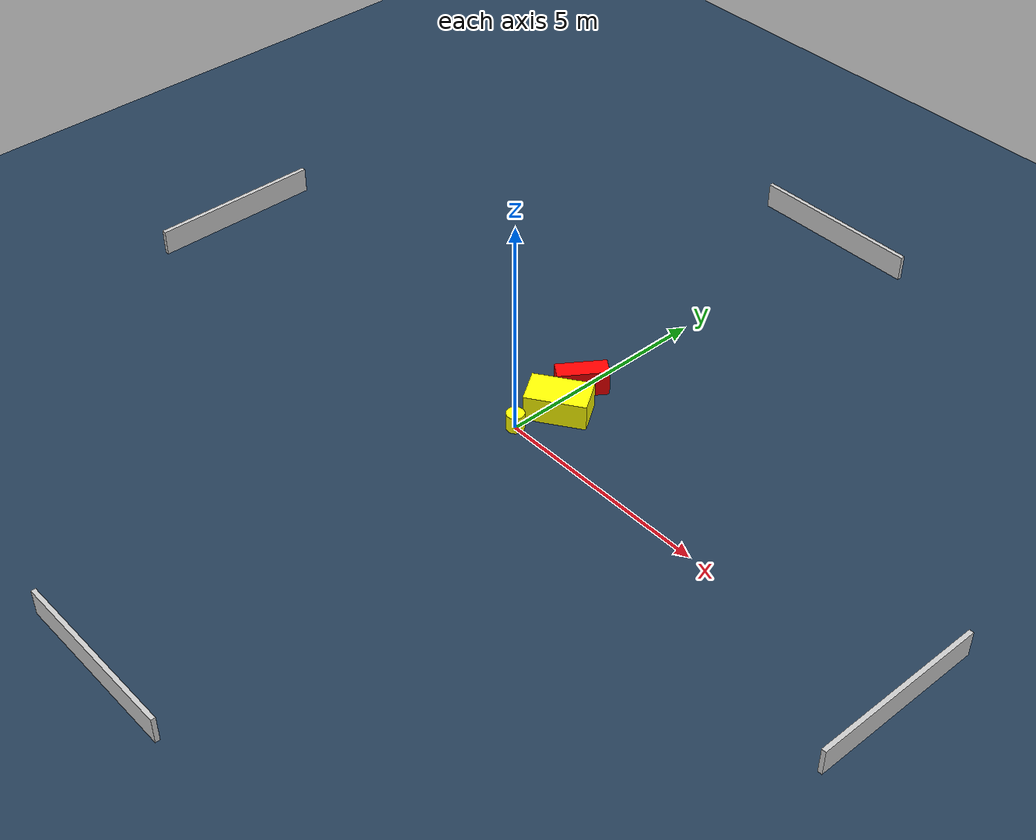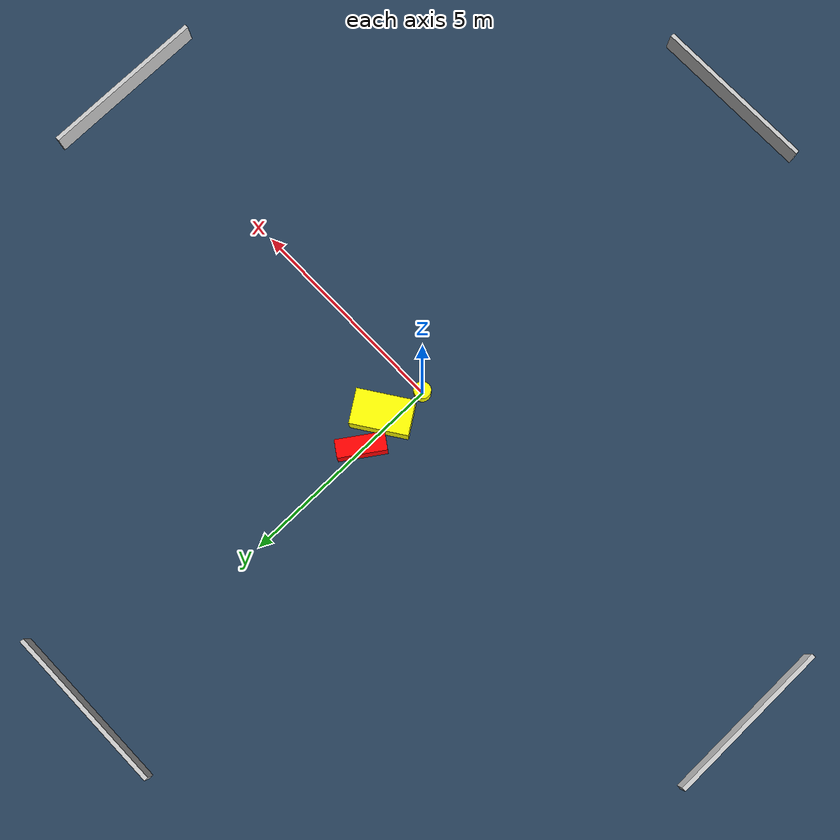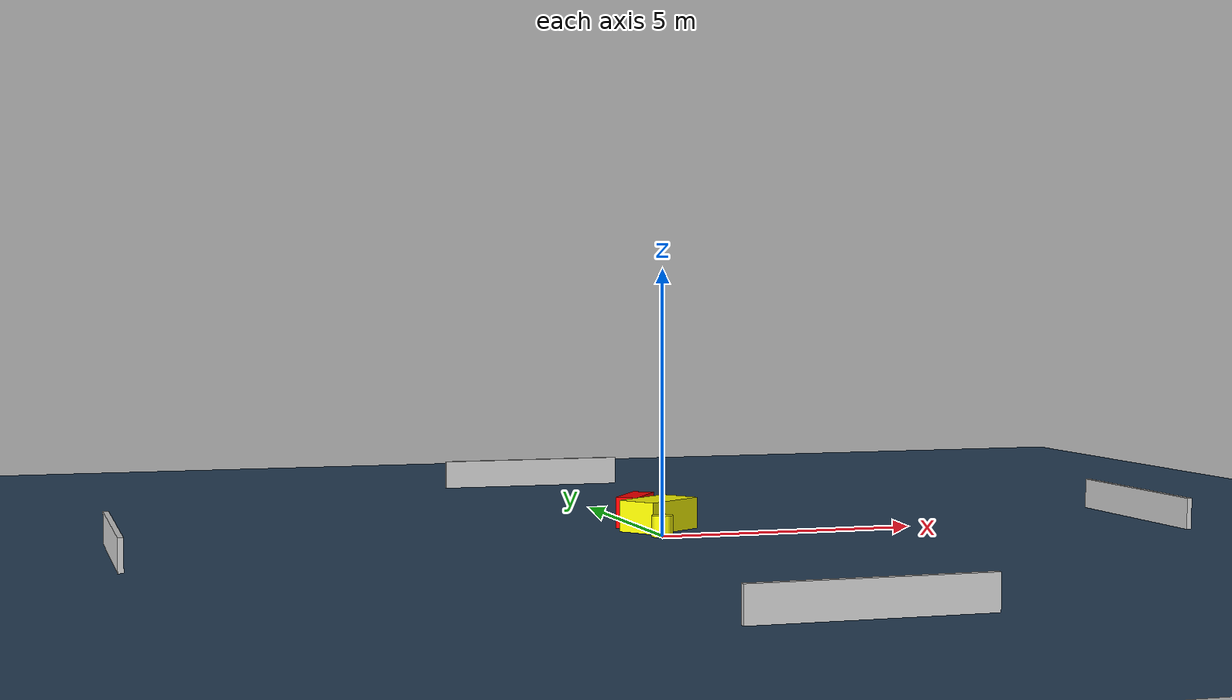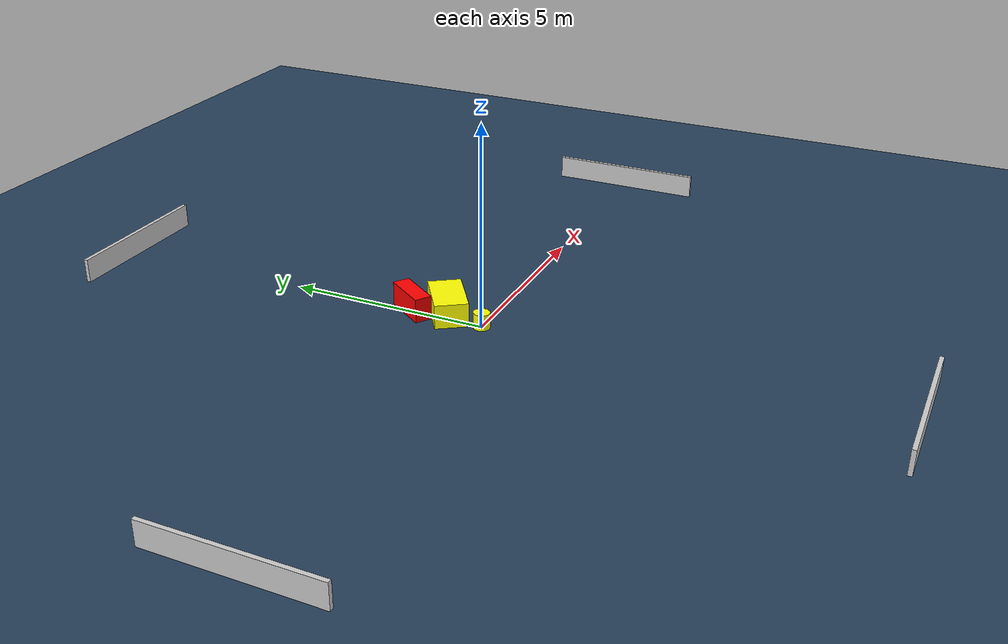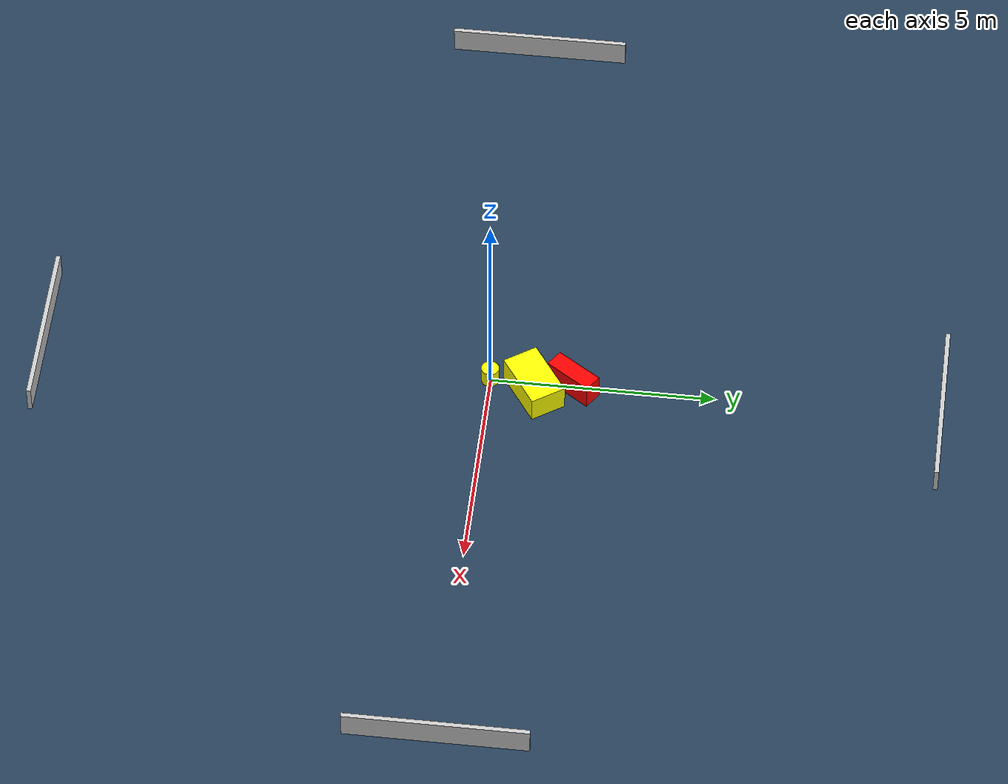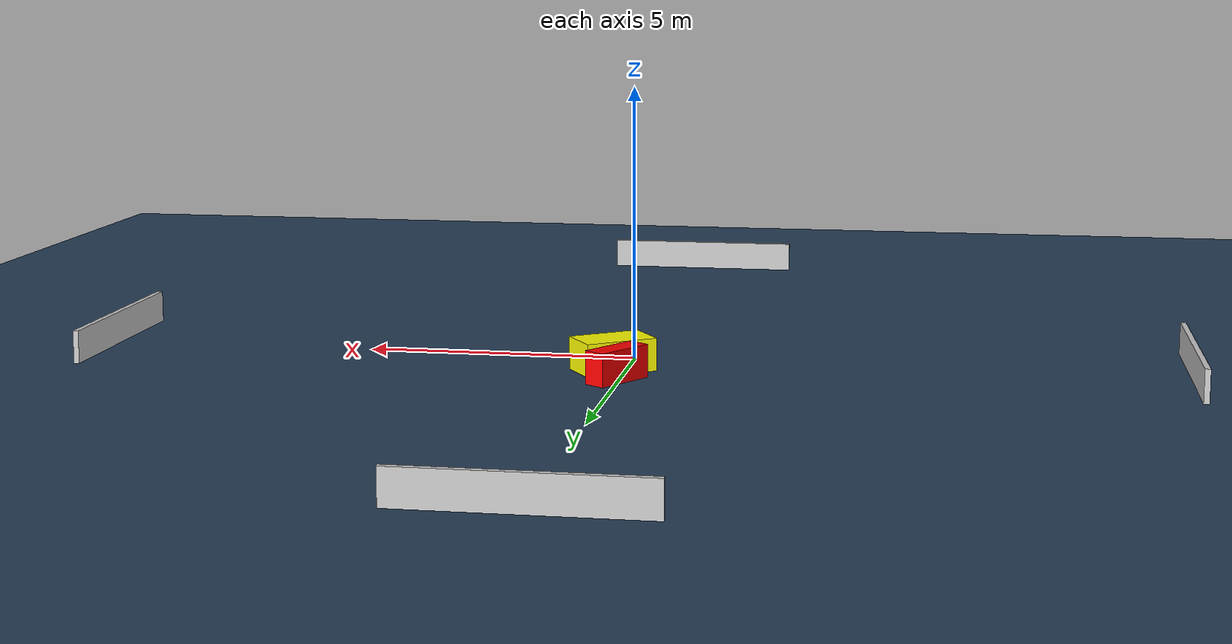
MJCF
<?xml version="1.0" ?>
<mujoco model="generated_environment">
  <option timestep="0.01" integrator="RK4" cone="elliptic"/>
  <default>
    <geom density="1"/>
  </default>
  <asset>
    <texture builtin="gradient" height="3072" name="skybox" rgb1="0.3 0.5 0.7" rgb2="0 0 0" type="skybox" width="512"/>
    <texture builtin="checker" height="300" name="groundplane" rgb1="0.2 0.3 0.4" rgb2="0.1 0.2 0.3" type="2d" width="300"/>
    <material name="groundplane" reflectance="0.2" texrepeat="5 5" texture="groundplane"/>
  </asset>
  <worldbody>
    <light dir="0 0 -1" directional="true" pos="0 0 1.5"/>
    <geom condim="3" friction="0.5 0.005 0.001" material="groundplane" name="floor" pos="0 0 0" size="0 0 0.05" type="plane"/>
    <body name="walls">
      <geom name="wall_1" condim="4" pos="-10.0 0.0 0.3" rgba="0.800000011920929 0.800000011920929 0.800000011920929 1.0" size="0.05 2.0 0.3" type="box"/>
      <geom name="wall_2" condim="4" pos="10.0 0.0 0.3" rgba="0.800000011920929 0.800000011920929 0.800000011920929 1.0" size="0.05 2.0 0.3" type="box"/>
      <geom name="wall_3" condim="4" pos="0.0 -10.0 0.3" rgba="0.800000011920929 0.800000011920929 0.800000011920929 1.0" size="2.0 0.05 0.3" type="box"/>
      <geom name="wall_4" condim="4" pos="0.0 10.0 0.3" rgba="0.800000011920929 0.800000011920929 0.800000011920929 1.0" size="2.0 0.05 0.3" type="box"/>
    </body>
    <body name="robot">
      <joint name="joint_x" type="slide" pos="0 0 0" axis="1 0 0"/>
      <joint name="joint_y" type="slide" pos="0 0 0" axis="0 1 0"/>
      <geom name="robot" type="cylinder" pos="0.0 0.0 0.2" size="0.2 0.2 0.0" mass="5.0" friction="1.0 0.005 0.0001" condim="4" rgba="1.0 1.0 0.0 1.0"/>
    </body>
    <body name="obstacle_1_movable">
      <geom name="obstacle_1_movable" condim="4" pos="0.23920469527641797 1.000681536094894 0.3" euler="0 0 214.04921797674214" friction="0.0 0.005 0.001" rgba="1.0 1.0 0.0 1.0" size="0.6765332902729951 0.4079485245857644 0.3" type="box" mass="0.1"/>
      <joint type="free"/>
    </body>
    <body name="obstacle_2_static">
      <geom name="obstacle_2_static" condim="4" pos="0.030539401257386772 1.8498366475132708 0.3" euler="0 0 55.69842529757438" friction="0.0 0.005 0.001" rgba="1.0 0.0 0.0 1.0" size="0.5672096693506541 0.21032019502653593 0.3" type="box"/>
    </body>
  </worldbody>
  <actuator>
    <motor name="actuator_x" joint="joint_x" gear="1" ctrlrange="-1 1"/>
    <motor name="actuator_y" joint="joint_y" gear="1" ctrlrange="-1 1"/>
  </actuator>
</mujoco>
